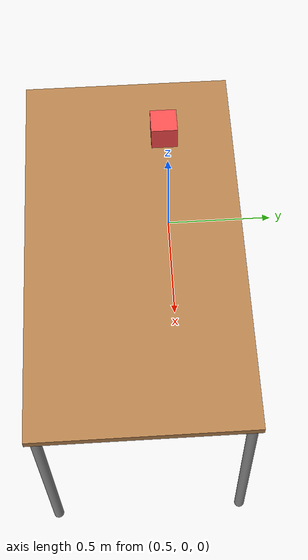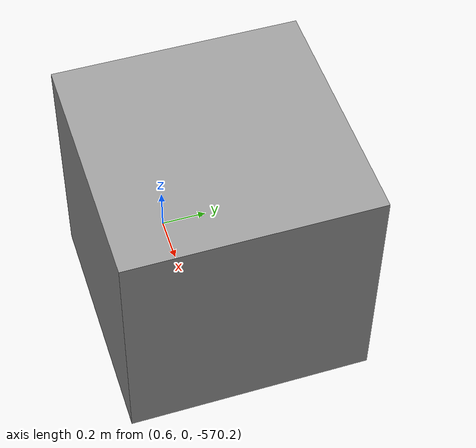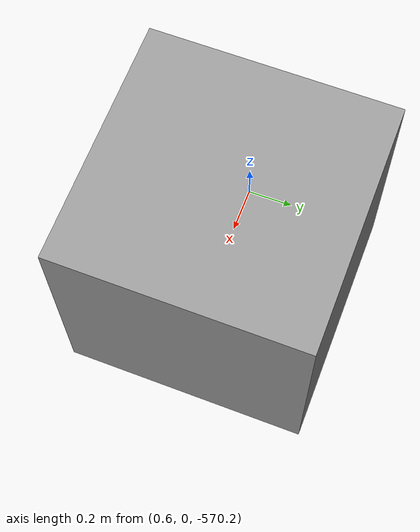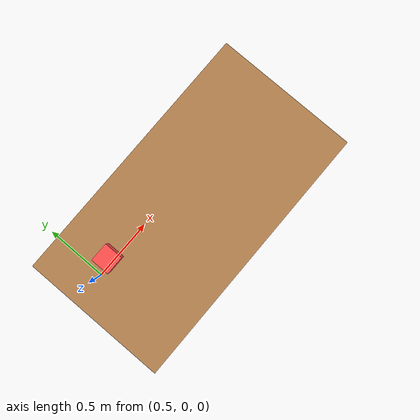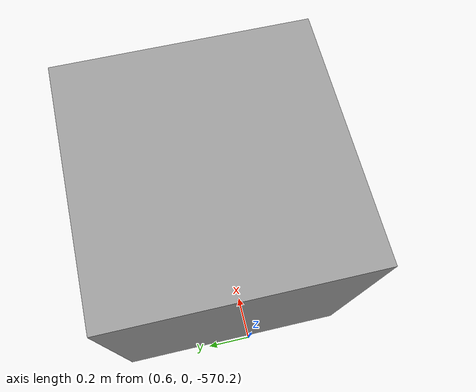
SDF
<sdf version="1.7">
 <world name="__default__">
  <gravity>0 0 -9.8</gravity>
  <magnetic_field>6e-06 2.3e-05 -4.2e-05</magnetic_field>
  <atmosphere type="adiabatic"/>
  <physics type="ode">
   <max_step_size>0.001</max_step_size>
   <real_time_factor>1</real_time_factor>
   <real_time_update_rate>1000</real_time_update_rate>
  </physics>
  <scene><ambient>0.4 0.4 0.4 1</ambient><background>0.7 0.7 0.7 1</background><shadows>1</shadows></scene>
  <audio><device>default</device></audio>
  <spherical_coordinates>
   <surface_model>EARTH_WGS84</surface_model>
   <latitude_deg>0</latitude_deg>
   <longitude_deg>0</longitude_deg>
   <elevation>0</elevation>
   <heading_deg>0</heading_deg>
  </spherical_coordinates>
  <model name="table">
   <static>1</static>
   <link name="link">
    <collision name="surface">
     <pose>0 0 1 0 -0 0</pose>
     <geometry><box><size>1.5 0.8 0.03</size></box></geometry>
     <surface><friction><ode><mu>0.6</mu><mu2>0.6</mu2></ode></friction></surface>
    </collision>
    <visual name="visual1">
     <pose>0 0 1 0 -0 0</pose>
     <geometry><box><size>1.5 0.8 0.03</size></box></geometry>
     <material>
      <script><uri>file://media/materials/scripts/gazebo.material</uri><name>Gazebo/Wood</name></script>
     </material>
    </visual>
    <collision name="front_left_leg">
     <pose>0.68 0.38 0.5 0 -0 0</pose>
     <geometry><cylinder><radius>0.02</radius><length>1</length></cylinder></geometry>
    </collision>
    <visual name="front_left_leg">
     <pose>0.68 0.38 0.5 0 -0 0</pose>
     <geometry><cylinder><radius>0.02</radius><length>1</length></cylinder></geometry>
     <material>
      <script><uri>file://media/materials/scripts/gazebo.material</uri><name>Gazebo/Grey</name></script>
     </material>
    </visual>
    <collision name="front_right_leg">
     <pose>0.68 -0.38 0.5 0 -0 0</pose>
     <geometry><cylinder><radius>0.02</radius><length>1</length></cylinder></geometry>
    </collision>
    <visual name="front_right_leg">
     <pose>0.68 -0.38 0.5 0 -0 0</pose>
     <geometry><cylinder><radius>0.02</radius><length>1</length></cylinder></geometry>
     <material>
      <script><uri>file://media/materials/scripts/gazebo.material</uri><name>Gazebo/Grey</name></script>
     </material>
    </visual>
    <collision name="back_right_leg">
     <pose>-0.68 -0.38 0.5 0 -0 0</pose>
     <geometry><cylinder><radius>0.02</radius><length>1</length></cylinder></geometry>
    </collision>
    <visual name="back_right_leg">
     <pose>-0.68 -0.38 0.5 0 -0 0</pose>
     <geometry><cylinder><radius>0.02</radius><length>1</length></cylinder></geometry>
     <material>
      <script><uri>file://media/materials/scripts/gazebo.material</uri><name>Gazebo/Grey</name></script>
     </material>
    </visual>
    <collision name="back_left_leg">
     <pose>-0.68 0.38 0.5 0 -0 0</pose>
     <geometry><cylinder><radius>0.02</radius><length>1</length></cylinder></geometry>
    </collision>
    <visual name="back_left_leg">
     <pose>-0.68 0.38 0.5 0 -0 0</pose>
     <geometry><cylinder><radius>0.02</radius><length>1</length></cylinder></geometry>
     <material>
      <script><uri>file://media/materials/scripts/gazebo.material</uri><name>Gazebo/Grey</name></script>
     </material>
    </visual>
   </link>
   <pose>1.24607 -0.166866 0 0 -0 0</pose>
  </model>
  <model name="unit_box">
   <link name="link">
    <inertial>
     <mass>1</mass>
     <inertia>
      <ixx>0.166667</ixx>
      <ixy>0</ixy>
      <ixz>0</ixz>
      <iyy>0.166667</iyy>
      <iyz>0</iyz>
      <izz>0.166667</izz>
     </inertia>
    </inertial>
    <gravity>0</gravity>
    <visual name="visual">
     <geometry><box><size>1 1 1</size></box></geometry>
     <material>
      <script><name>Gazebo/Grey</name><uri>file://media/materials/scripts/gazebo.material</uri></script>
      <shader type="pixel"><normal_map>__default__</normal_map></shader>
     </material>
    </visual>
    <collision name="collision">
     <geometry><box><size>1 1 1</size></box></geometry>
     <surface>
      <friction>
       <ode><mu>1</mu><mu2>1</mu2><fdir1>0 0 0</fdir1><slip1>0</slip1><slip2>0</slip2></ode>
       <torsional>
        <coefficient>1</coefficient>
        <patch_radius>0</patch_radius>
        <surface_radius>0</surface_radius>
        <use_patch_radius>1</use_patch_radius>
        <ode><slip>0</slip></ode>
       </torsional>
      </friction>
      <bounce><restitution_coefficient>0</restitution_coefficient><threshold>1e+06</threshold></bounce>
      <contact>
       <collide_without_contact>0</collide_without_contact>
       <collide_without_contact_bitmask>1</collide_without_contact_bitmask>
       <collide_bitmask>1</collide_bitmask>
       <ode>
        <soft_cfm>0</soft_cfm>
        <soft_erp>0.2</soft_erp>
        <kp>1e+13</kp>
        <kd>1</kd>
        <max_vel>0.01</max_vel>
        <min_depth>0</min_depth>
       </ode>
       <bullet>
        <split_impulse>1</split_impulse>
        <split_impulse_penetration_threshold>-0.01</split_impulse_penetration_threshold>
        <soft_cfm>0</soft_cfm>
        <soft_erp>0.2</soft_erp>
        <kp>1e+13</kp>
        <kd>1</kd>
       </bullet>
      </contact>
     </surface>
    </collision>
   </link>
   <link name="link_0">
    <inertial>
     <mass>1</mass>
     <inertia>
      <ixx>0.166667</ixx>
      <ixy>0</ixy>
      <ixz>0</ixz>
      <iyy>0.166667</iyy>
      <iyz>0</iyz>
      <izz>0.166667</izz>
     </inertia>
    </inertial>
    <pose>-0.325487 -0.114768 570.704 0 -0 0</pose>
    <visual name="visual">
     <geometry><box><size>0.1 0.1 0.1</size></box></geometry>
     <material>
      <lighting>1</lighting>
      <script><uri>file://media/materials/scripts/gazebo.material</uri><name>Gazebo/Grey</name></script>
      <shader type="pixel"><normal_map>__default__</normal_map></shader>
      <ambient>1 0.3 0.3 1</ambient>
      <diffuse>0.7 0.7 0.7 1</diffuse>
      <specular>0.01 0.01 0.01 1</specular>
      <emissive>0 0 0 1</emissive>
     </material>
    </visual>
    <collision name="collision">
     <geometry><box><size>0.1 0.1 0.1</size></box></geometry>
     <surface>
      <friction>
       <ode><mu>1</mu><mu2>1</mu2><fdir1>0 0 0</fdir1><slip1>0</slip1><slip2>0</slip2></ode>
       <torsional>
        <coefficient>1</coefficient>
        <patch_radius>0</patch_radius>
        <surface_radius>0</surface_radius>
        <use_patch_radius>1</use_patch_radius>
        <ode><slip>0</slip></ode>
       </torsional>
      </friction>
      <bounce><restitution_coefficient>0</restitution_coefficient><threshold>1e+06</threshold></bounce>
      <contact>
       <collide_without_contact>0</collide_without_contact>
       <collide_without_contact_bitmask>1</collide_without_contact_bitmask>
       <collide_bitmask>1</collide_bitmask>
       <ode>
        <soft_cfm>0</soft_cfm>
        <soft_erp>0.2</soft_erp>
        <kp>1e+13</kp>
        <kd>1</kd>
        <max_vel>0.01</max_vel>
        <min_depth>0</min_depth>
       </ode>
       <bullet>
        <split_impulse>1</split_impulse>
        <split_impulse_penetration_threshold>-0.01</split_impulse_penetration_threshold>
        <soft_cfm>0</soft_cfm>
        <soft_erp>0.2</soft_erp>
        <kp>1e+13</kp>
        <kd>1</kd>
       </bullet>
      </contact>
     </surface>
    </collision>
   </link>
   <static>0</static>
   <pose>1.1041 0.082959 -569.625 0 -0 0</pose>
  </model>
 </world>
</sdf>
